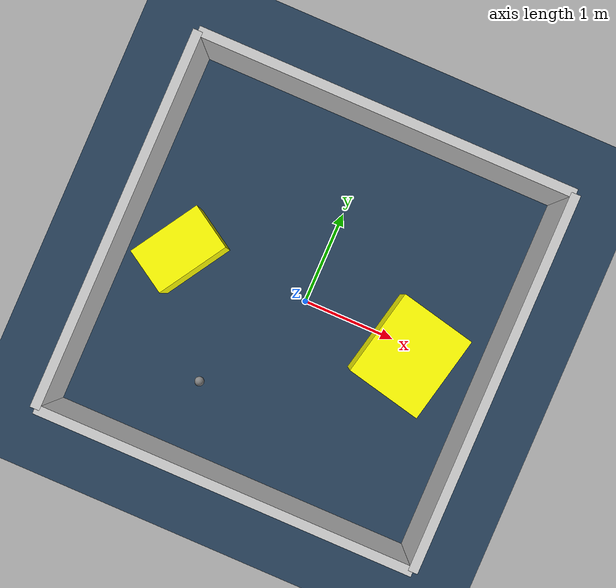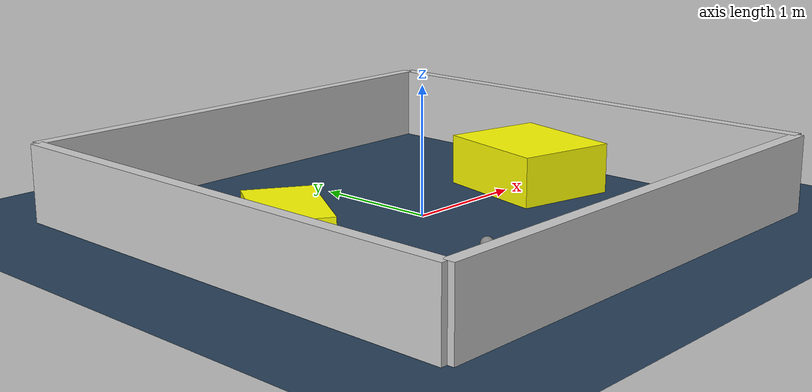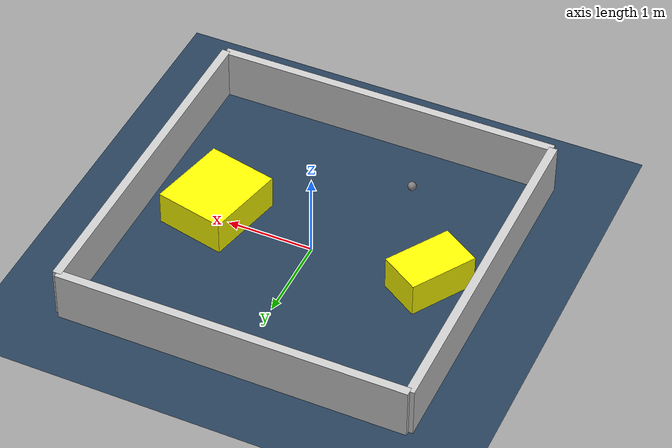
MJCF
<?xml version="1.0" ?>
<mujoco model="generated_environment">
  <option timestep="0.01" integrator="RK4" cone="elliptic"/>
  <default>
    <geom density="1"/>
  </default>
  <asset>
    <texture builtin="gradient" height="3072" rgb1="0.3 0.5 0.7" rgb2="0 0 0" type="skybox" width="512"/>
    <texture builtin="checker" height="300" mark="edge" markrgb="0.8 0.8 0.8" name="groundplane" rgb1="0.2 0.3 0.4" rgb2="0.1 0.2 0.3" type="2d" width="300"/>
    <material name="groundplane" reflectance="0.2" texrepeat="5 5" texture="groundplane" texuniform="true"/>
    <material name="robot" rgba="0.0 1.0 0.0 1"/>
  </asset>
  <worldbody>
    <light dir="0 0 -1" directional="true" pos="0 0 1.5"/>
    <geom condim="4" friction="1.0 0.005 0.001" material="groundplane" name="floor" size="0 0 0.05" type="plane"/>
    <body name="walls">
      <geom name="wall_1" condim="4" pos="-2.0 0.0 0.3" rgba="0.800000011920929 0.800000011920929 0.800000011920929 1.0" size="0.05 2.0 0.3" type="box"/>
      <geom name="wall_2" condim="4" pos="2.0 0.0 0.3" rgba="0.800000011920929 0.800000011920929 0.800000011920929 1.0" size="0.05 2.0 0.3" type="box"/>
      <geom name="wall_3" condim="4" pos="0.0 -2.0 0.3" rgba="0.800000011920929 0.800000011920929 0.800000011920929 1.0" size="2.0 0.05 0.3" type="box"/>
      <geom name="wall_4" condim="4" pos="0.0 2.0 0.3" rgba="0.800000011920929 0.800000011920929 0.800000011920929 1.0" size="2.0 0.05 0.3" type="box"/>
    </body>
    <body name="robot">
      <joint name="joint_x" type="slide" pos="0 0 0" axis="1 0 0"/>
      <joint name="joint_y" type="slide" pos="0 0 0" axis="0 1 0"/>
      <geom name="robot" type="sphere" pos="-0.6746818277202977 -1.1879015258949042 0.2" size="0.05" mass="5." friction="1.0 0.005 0.0001" condim="4"/>
      <site name="sensor_ball"/>
    </body>
    <body name="obstacle_1_movable">
      <geom name="obstacle_1_movable" condim="4" pos="1.1872396416458877 -0.08422788147529547 0.2" euler="0 0 347.4501007142663" friction="1.0 0.005 0.001" rgba="1 1 0 1" size="0.41093584797232974 0.4729137883732667 0.2" type="box" mass="0.1"/>
      <joint type="free"/>
    </body>
    <body name="obstacle_2_movable">
      <geom name="obstacle_2_movable" condim="4" pos="-1.3762883411221705 -0.024888590666482857 0.2" euler="0 0 147.92444128718796" friction="1.0 0.005 0.001" rgba="1 1 0 1" size="0.25529983323752303 0.40316610615980686 0.2" type="box" mass="0.1"/>
      <joint type="free"/>
    </body>
  </worldbody>
  <actuator>
    <motor name="actuator_x" joint="joint_x" gear="1" ctrlrange="-1 1"/>
    <motor name="actuator_y" joint="joint_y" gear="1" ctrlrange="-1 1"/>
  </actuator>
</mujoco>
